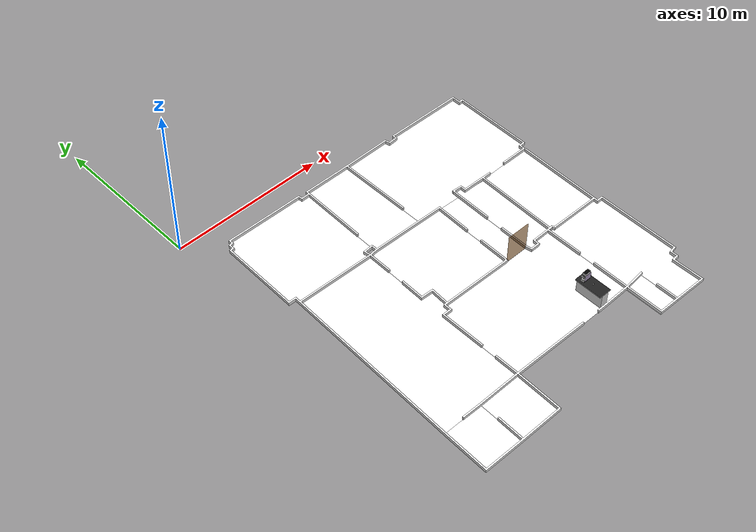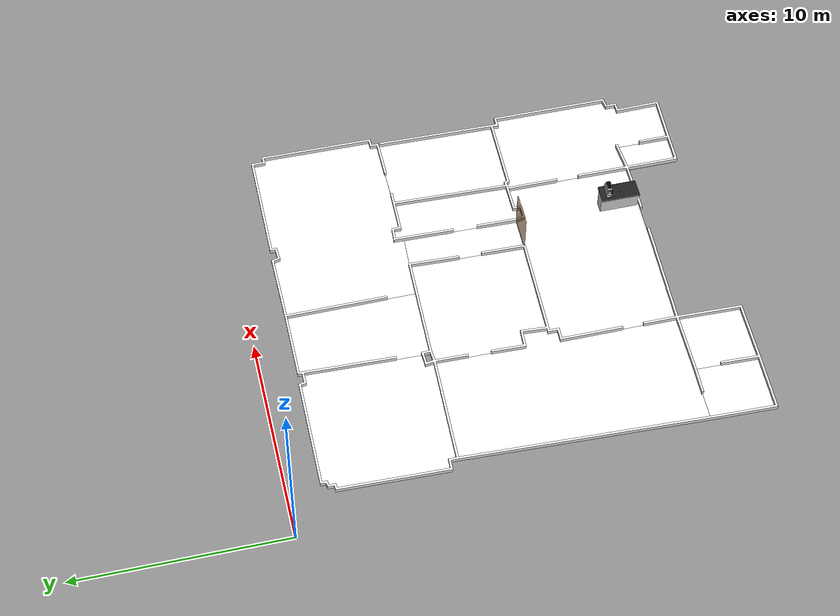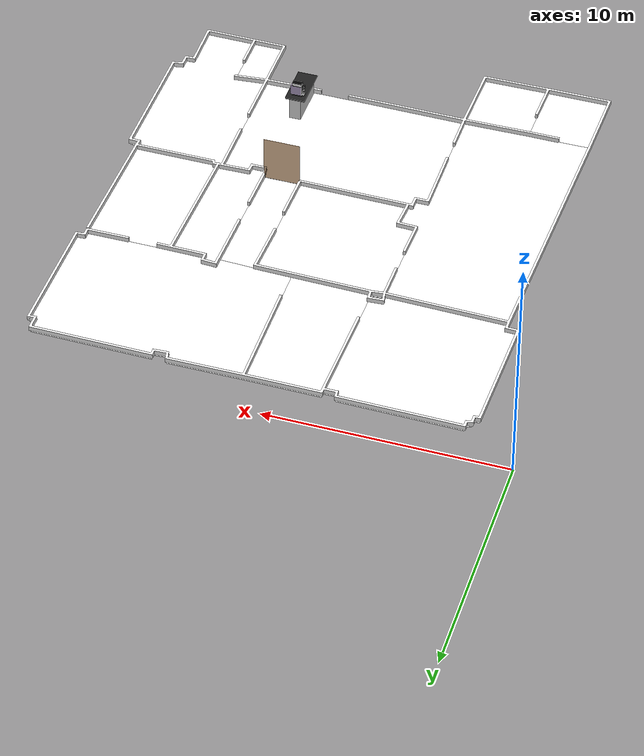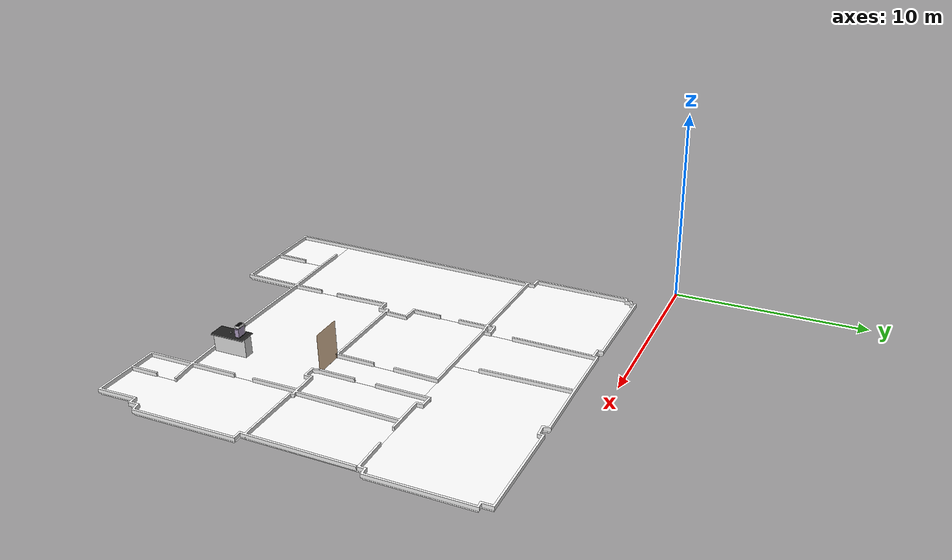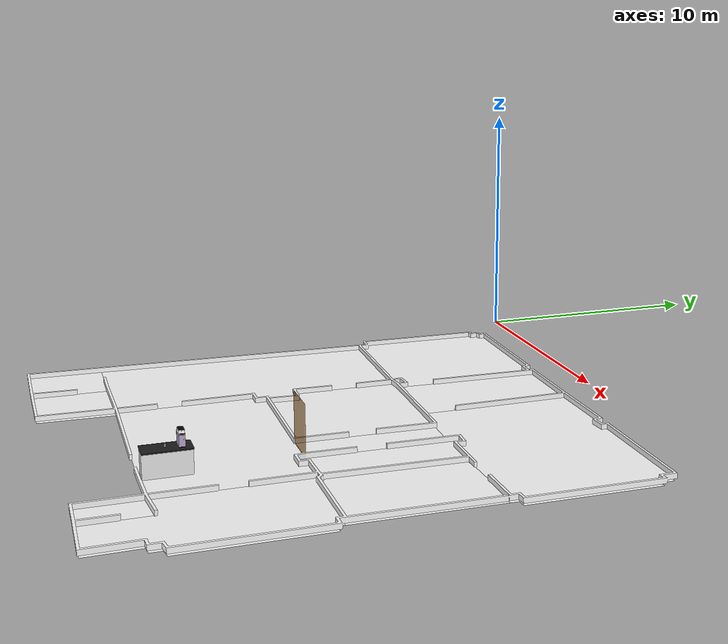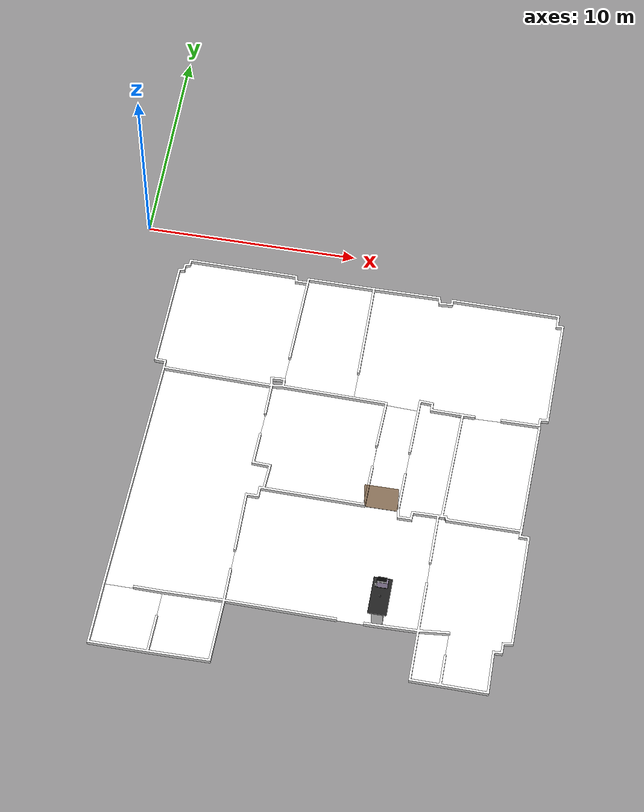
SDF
<sdf version="1.7">
  <world name="world">
    <scene>
      <ambient>0.8 0.8 0.8 1.0</ambient>
      <background>0 0 0</background>
      <grid>false</grid>
    </scene>
    <include>
      <uri>model://sun</uri>
    </include>
    <gui>
      <camera name="gui_camera">
        <pose>4.11873 -12.7554 9.02279 0 0.812 -0.450002</pose>
      </camera>
    </gui>

    <model name="door_cafeteria">
      <pose>13.459129316830579 -13.296819125933453 0.0 0 0 0.00034506554875947566</pose>
      <link name="right">
        <pose>0 0 1.01 0 0 0</pose>
        <visual name="right_visual">
          <geometry>
            <box>
              <size>1.5409707459290378 0.03 2.0</size>
            </box>
          </geometry>
          <material>
            <ambient>0.5 0.25 0 0.6</ambient>
            <diffuse>0.5 0.25 0 0.6</diffuse>
          </material>
        </visual>
        <collision name="right_collision">
          <geometry>
            <box>
              <size>1.5409707459290378 0.03 2.0</size>
            </box>
          </geometry>
          <surface>
            <contact>
              <collide_bitmask>0x02</collide_bitmask>
            </contact>
          </surface>
        </collision>
        <inertial>
          <mass>50.0</mass>
          <inertia>
            <ixx>16.670416666666668</ixx>
            <iyy>26.56079516587123</iyy>
            <izz>9.897878499204564</izz>
          </inertia>
        </inertial>
      </link>
      <joint name="right_joint" type="revolute">
        <parent>world</parent>
        <child>right</child>
        <axis>
          <xyz>0 0 -1</xyz>
          <limit>
            <lower>0</lower>
            <upper>1.57</upper>
          </limit>
        </axis>
        <pose>0.7754853729645189 0 0 0 0 0</pose>
      </joint>
    </model>

    <include>
      <name>starbots_complete_L1</name>
      <uri>model://starbots_complete_L1</uri>
      <pose>0 0 0.0 0 0 0</pose>
    </include>

        <!-- ADDED ELEMENTS for charging simulated system -->
    <plugin name="gazebo_ros_state" filename="libgazebo_ros_state.so">
      <ros>
        <namespace>/gazebo</namespace>
      </ros>
      <update_rate>5.0</update_rate>
    </plugin>

    <model name="starbots_bartender_dispenser">
      <static>1</static>
      <include>
        <uri>model://starbots_bartender_dispenser</uri>
      </include>
      <pose>14.2 -18.2 0.5 0 0 0</pose>
    </model>

    <model name="portable_cup_2">
      <static>0</static>
      <include>
        <uri>model://portable_cup_2</uri>
      </include>
      <pose>14.16 -18.19 1.025 1.57 0 0</pose>
    </model>

    <model name="coffee_machine">
      <static>1</static>
      <include>
        <uri>model://coffee_machine</uri>
      </include>
      <pose>14.0 -17.7 1.0 0 0 1.57</pose>
    </model>

  </world>
</sdf>

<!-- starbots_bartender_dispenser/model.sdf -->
<sdf version='1.7'>
  <model name="starbots_bartender_dispenser">
      <static>1</static>
      <link name='countertop'>
        <inertial>
          <mass>50.25</mass>
          <inertia>
            <ixx>0.00015</ixx>
            <ixy>0.000000</ixy>
            <ixz>0.000000</ixz>
            <iyy>0.00015</iyy>
            <iyz>0.000000</iyz>
            <izz>0.00015</izz>
          </inertia>
        </inertial>
        <collision name='countertop_c'>
          <geometry>
            <box>
              <size>0.5 1.8 1.0</size>
            </box>
          </geometry>
          <laser_retro>8000</laser_retro>
          <surface>
            <friction>
              <ode>
                <mu>30.0</mu>
                <mu2>30.0</mu2>
              </ode>
            </friction>
            <contact>
              <ode>
                <kp>1000000.0</kp>
                <kd>100.0</kd>
                <max_vel>1.0</max_vel>
                <min_depth>0.002</min_depth>
              </ode>
            </contact>
          </surface>
        </collision>
        <visual name='countertop_v'>
          <geometry>
            <box>
              <size>0.5 1.8 1.0</size>
            </box>
          </geometry>
          <material>
            <script>
              <uri>file://media/materials/scripts/gazebo.material</uri>
              <name>Gazebo/White</name>
            </script>
          </material>
        </visual>
        <collision name='top_c'>
          <pose>0 0 0.5 0 0 0</pose>

          <geometry>
            <box>
              <size>0.85 1.81 0.05</size>
            </box>
          </geometry>
          <laser_retro>8000</laser_retro>
          <surface>
            <friction>
              <ode>
                <mu>30.0</mu>
                <mu2>30.0</mu2>
              </ode>
            </friction>
            <contact>
              <ode>
                <kp>1000000.0</kp>
                <kd>100.0</kd>
                <max_vel>1.0</max_vel>
                <min_depth>0.002</min_depth>
              </ode>
            </contact>
          </surface>
        </collision>
        <visual name='top_v'>
          <pose>0 0 0.5 0 0 0</pose>

          <geometry>
            <box>
              <size>0.85 1.81 0.05</size>
            </box>
          </geometry>
          <material>
            <script>
              <uri>file://media/materials/scripts/gazebo.material</uri>
              <name>Gazebo/Black</name>
            </script>
          </material>
        </visual>

        <velocity_decay>
          <linear>0.000000</linear>
          <angular>0.000000</angular>
        </velocity_decay>
        <self_collide>0</self_collide>
        <kinematic>0</kinematic>
        <gravity>1</gravity>
      </link>

  </model>
</sdf>

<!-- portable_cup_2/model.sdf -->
<sdf version="1.5">
  <model name="portable_cup_2">
    <static>false</static>
    <link name="link">
      <inertial>
        <pose>0.04 0.05 0.04 0 -0 0</pose>
        <mass>0.1</mass>
        <inertia>
          <ixx>0.00013667</ixx>
          <ixy>0</ixy>
          <ixz>0</ixz>
          <iyy>0.00010667</iyy>
          <iyz>0</iyz>
          <izz>0.00013667</izz>
        </inertia>
      </inertial>

      <collision name="col_portable_cup_2">
        <pose>0 0 0 0 0 0</pose>
        <geometry>
            <mesh>
                <uri>model://portable_cup_2/meshes/coffee.STL</uri>
            </mesh>
        </geometry>
        <surface>
          <friction>
            <ode>
              <mu>0.01</mu>
              <mu2>0.01</mu2>
            </ode>
          </friction>
          <contact>
            <ode>
              <kp>10000000.0</kp>
              <kd>10000000.0</kd>
              <min_depth>0.001</min_depth>
              <max_vel>1.1</max_vel>
            </ode>
          </contact>
        </surface>
      </collision>

      <visual name="visual_portable_cup_2">
        <pose>0 0 0 0 0 0</pose>
        <geometry>
          <mesh>
            <uri>model://portable_cup_2/meshes/coffee.STL</uri>

          </mesh>
        </geometry>
      </visual>
    </link>

  </model>
</sdf>

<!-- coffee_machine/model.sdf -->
<sdf version="1.5">
  <model name="coffee_machine">
    <static>true</static>
    <pose>0 0 0 0 0 0</pose>
    <link name="body">
      <inertial>
        <mass>5</mass>
        <inertia>
          <ixx>1.0</ixx>
          <ixy>0.0</ixy>
          <iyy>1.0</iyy>
          <ixz>0.0</ixz>
          <iyz>0.0</iyz>
          <izz>1.0</izz>
        </inertia>
        <pose>0 0 0 0 0 0</pose>
      </inertial>
      <collision name="collision">
        <geometry>
          <mesh>
            <uri>model://coffee_machine/meshes/cafeteria.dae</uri>
          </mesh>
        </geometry>
      </collision>
      <visual name="visual">
        <geometry>
          <mesh>
            <uri>model://coffee_machine/meshes/cafeteria.dae</uri>
          </mesh>
        </geometry>
      </visual>
    </link>
  </model>
</sdf>

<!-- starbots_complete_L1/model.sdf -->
<sdf version="1.7">
  <model name="starbots_complete_L1">
    <static>true</static>
    <link name="floor_1">
      <visual name="visual">
        <geometry>
          <mesh>
            <uri>model://starbots_complete_L1/meshes/floor_1.obj</uri>
          </mesh>
        </geometry>
        <material>
          <diffuse>1.0 1.0 1.0</diffuse>
          <specular>0.1 0.1 0.1</specular>
          <pbr>
            <metal>
              <metalness>0.0</metalness>
              <albedo_map>model://starbots_complete_L1/meshes/blue_linoleum.png</albedo_map>
            </metal>
          </pbr>
          <script>
            <uri>model://starbots_complete_L1/meshes/</uri>
            <name>floor_1_Diffuse</name>
          </script>
        </material>
      </visual>
      <collision name="collision">
        <geometry>
          <mesh>
            <uri>model://starbots_complete_L1/meshes/floor_1.obj</uri>
          </mesh>
        </geometry>
        <surface>
          <contact>
            <collide_bitmask>0x01</collide_bitmask>
          </contact>
        </surface>
      </collision>
    </link>
    <link name="floor_2">
      <visual name="visual">
        <geometry>
          <mesh>
            <uri>model://starbots_complete_L1/meshes/floor_2.obj</uri>
          </mesh>
        </geometry>
        <material>
          <diffuse>1.0 1.0 1.0</diffuse>
          <specular>0.1 0.1 0.1</specular>
          <pbr>
            <metal>
              <metalness>0.0</metalness>
              <albedo_map>model://starbots_complete_L1/meshes/blue_linoleum.png</albedo_map>
            </metal>
          </pbr>
          <script>
            <uri>model://starbots_complete_L1/meshes/</uri>
            <name>floor_2_Diffuse</name>
          </script>
        </material>
      </visual>
      <collision name="collision">
        <geometry>
          <mesh>
            <uri>model://starbots_complete_L1/meshes/floor_2.obj</uri>
          </mesh>
        </geometry>
        <surface>
          <contact>
            <collide_bitmask>0x01</collide_bitmask>
          </contact>
        </surface>
      </collision>
    </link>
    <link name="floor_3">
      <visual name="visual">
        <geometry>
          <mesh>
            <uri>model://starbots_complete_L1/meshes/floor_3.obj</uri>
          </mesh>
        </geometry>
        <material>
          <diffuse>1.0 1.0 1.0</diffuse>
          <specular>0.1 0.1 0.1</specular>
          <pbr>
            <metal>
              <metalness>0.0</metalness>
              <albedo_map>model://starbots_complete_L1/meshes/blue_linoleum.png</albedo_map>
            </metal>
          </pbr>
          <script>
            <uri>model://starbots_complete_L1/meshes/</uri>
            <name>floor_3_Diffuse</name>
          </script>
        </material>
      </visual>
      <collision name="collision">
        <geometry>
          <mesh>
            <uri>model://starbots_complete_L1/meshes/floor_3.obj</uri>
          </mesh>
        </geometry>
        <surface>
          <contact>
            <collide_bitmask>0x01</collide_bitmask>
          </contact>
        </surface>
      </collision>
    </link>
    <link name="floor_4">
      <visual name="visual">
        <geometry>
          <mesh>
            <uri>model://starbots_complete_L1/meshes/floor_4.obj</uri>
          </mesh>
        </geometry>
        <material>
          <diffuse>1.0 1.0 1.0</diffuse>
          <specular>0.1 0.1 0.1</specular>
          <pbr>
            <metal>
              <metalness>0.0</metalness>
              <albedo_map>model://starbots_complete_L1/meshes/blue_linoleum.png</albedo_map>
            </metal>
          </pbr>
          <script>
            <uri>model://starbots_complete_L1/meshes/</uri>
            <name>floor_4_Diffuse</name>
          </script>
        </material>
      </visual>
      <collision name="collision">
        <geometry>
          <mesh>
            <uri>model://starbots_complete_L1/meshes/floor_4.obj</uri>
          </mesh>
        </geometry>
        <surface>
          <contact>
            <collide_bitmask>0x01</collide_bitmask>
          </contact>
        </surface>
      </collision>
    </link>
    <link name="floor_5">
      <visual name="visual">
        <geometry>
          <mesh>
            <uri>model://starbots_complete_L1/meshes/floor_5.obj</uri>
          </mesh>
        </geometry>
        <material>
          <diffuse>1.0 1.0 1.0</diffuse>
          <specular>0.1 0.1 0.1</specular>
          <pbr>
            <metal>
              <metalness>0.0</metalness>
              <albedo_map>model://starbots_complete_L1/meshes/blue_linoleum.png</albedo_map>
            </metal>
          </pbr>
          <script>
            <uri>model://starbots_complete_L1/meshes/</uri>
            <name>floor_5_Diffuse</name>
          </script>
        </material>
      </visual>
      <collision name="collision">
        <geometry>
          <mesh>
            <uri>model://starbots_complete_L1/meshes/floor_5.obj</uri>
          </mesh>
        </geometry>
        <surface>
          <contact>
            <collide_bitmask>0x01</collide_bitmask>
          </contact>
        </surface>
      </collision>
    </link>
    <link name="floor_6">
      <visual name="visual">
        <geometry>
          <mesh>
            <uri>model://starbots_complete_L1/meshes/floor_6.obj</uri>
          </mesh>
        </geometry>
        <material>
          <diffuse>1.0 1.0 1.0</diffuse>
          <specular>0.1 0.1 0.1</specular>
          <pbr>
            <metal>
              <metalness>0.0</metalness>
              <albedo_map>model://starbots_complete_L1/meshes/blue_linoleum.png</albedo_map>
            </metal>
          </pbr>
          <script>
            <uri>model://starbots_complete_L1/meshes/</uri>
            <name>floor_6_Diffuse</name>
          </script>
        </material>
      </visual>
      <collision name="collision">
        <geometry>
          <mesh>
            <uri>model://starbots_complete_L1/meshes/floor_6.obj</uri>
          </mesh>
        </geometry>
        <surface>
          <contact>
            <collide_bitmask>0x01</collide_bitmask>
          </contact>
        </surface>
      </collision>
    </link>
    <link name="floor_7">
      <visual name="visual">
        <geometry>
          <mesh>
            <uri>model://starbots_complete_L1/meshes/floor_7.obj</uri>
          </mesh>
        </geometry>
        <material>
          <diffuse>1.0 1.0 1.0</diffuse>
          <specular>0.1 0.1 0.1</specular>
          <pbr>
            <metal>
              <metalness>0.0</metalness>
              <albedo_map>model://starbots_complete_L1/meshes/blue_linoleum.png</albedo_map>
            </metal>
          </pbr>
          <script>
            <uri>model://starbots_complete_L1/meshes/</uri>
            <name>floor_7_Diffuse</name>
          </script>
        </material>
      </visual>
      <collision name="collision">
        <geometry>
          <mesh>
            <uri>model://starbots_complete_L1/meshes/floor_7.obj</uri>
          </mesh>
        </geometry>
        <surface>
          <contact>
            <collide_bitmask>0x01</collide_bitmask>
          </contact>
        </surface>
      </collision>
    </link>
    <link name="floor_8">
      <visual name="visual">
        <geometry>
          <mesh>
            <uri>model://starbots_complete_L1/meshes/floor_8.obj</uri>
          </mesh>
        </geometry>
        <material>
          <diffuse>1.0 1.0 1.0</diffuse>
          <specular>0.1 0.1 0.1</specular>
          <pbr>
            <metal>
              <metalness>0.0</metalness>
              <albedo_map>model://starbots_complete_L1/meshes/blue_linoleum.png</albedo_map>
            </metal>
          </pbr>
          <script>
            <uri>model://starbots_complete_L1/meshes/</uri>
            <name>floor_8_Diffuse</name>
          </script>
        </material>
      </visual>
      <collision name="collision">
        <geometry>
          <mesh>
            <uri>model://starbots_complete_L1/meshes/floor_8.obj</uri>
          </mesh>
        </geometry>
        <surface>
          <contact>
            <collide_bitmask>0x01</collide_bitmask>
          </contact>
        </surface>
      </collision>
    </link>
    <link name="floor_9">
      <visual name="visual">
        <geometry>
          <mesh>
            <uri>model://starbots_complete_L1/meshes/floor_9.obj</uri>
          </mesh>
        </geometry>
        <material>
          <diffuse>1.0 1.0 1.0</diffuse>
          <specular>0.1 0.1 0.1</specular>
          <pbr>
            <metal>
              <metalness>0.0</metalness>
              <albedo_map>model://starbots_complete_L1/meshes/blue_linoleum.png</albedo_map>
            </metal>
          </pbr>
          <script>
            <uri>model://starbots_complete_L1/meshes/</uri>
            <name>floor_9_Diffuse</name>
          </script>
        </material>
      </visual>
      <collision name="collision">
        <geometry>
          <mesh>
            <uri>model://starbots_complete_L1/meshes/floor_9.obj</uri>
          </mesh>
        </geometry>
        <surface>
          <contact>
            <collide_bitmask>0x01</collide_bitmask>
          </contact>
        </surface>
      </collision>
    </link>
    <link name="floor_10">
      <visual name="visual">
        <geometry>
          <mesh>
            <uri>model://starbots_complete_L1/meshes/floor_10.obj</uri>
          </mesh>
        </geometry>
        <material>
          <diffuse>1.0 1.0 1.0</diffuse>
          <specular>0.1 0.1 0.1</specular>
          <pbr>
            <metal>
              <metalness>0.0</metalness>
              <albedo_map>model://starbots_complete_L1/meshes/blue_linoleum.png</albedo_map>
            </metal>
          </pbr>
          <script>
            <uri>model://starbots_complete_L1/meshes/</uri>
            <name>floor_10_Diffuse</name>
          </script>
        </material>
      </visual>
      <collision name="collision">
        <geometry>
          <mesh>
            <uri>model://starbots_complete_L1/meshes/floor_10.obj</uri>
          </mesh>
        </geometry>
        <surface>
          <contact>
            <collide_bitmask>0x01</collide_bitmask>
          </contact>
        </surface>
      </collision>
    </link>
    <link name="floor_11">
      <visual name="visual">
        <geometry>
          <mesh>
            <uri>model://starbots_complete_L1/meshes/floor_11.obj</uri>
          </mesh>
        </geometry>
        <material>
          <diffuse>1.0 1.0 1.0</diffuse>
          <specular>0.1 0.1 0.1</specular>
          <pbr>
            <metal>
              <metalness>0.0</metalness>
              <albedo_map>model://starbots_complete_L1/meshes/blue_linoleum.png</albedo_map>
            </metal>
          </pbr>
          <script>
            <uri>model://starbots_complete_L1/meshes/</uri>
            <name>floor_11_Diffuse</name>
          </script>
        </material>
      </visual>
      <collision name="collision">
        <geometry>
          <mesh>
            <uri>model://starbots_complete_L1/meshes/floor_11.obj</uri>
          </mesh>
        </geometry>
        <surface>
          <contact>
            <collide_bitmask>0x01</collide_bitmask>
          </contact>
        </surface>
      </collision>
    </link>
    <link name="floor_12">
      <visual name="visual">
        <geometry>
          <mesh>
            <uri>model://starbots_complete_L1/meshes/floor_12.obj</uri>
          </mesh>
        </geometry>
        <material>
          <diffuse>1.0 1.0 1.0</diffuse>
          <specular>0.1 0.1 0.1</specular>
          <pbr>
            <metal>
              <metalness>0.0</metalness>
              <albedo_map>model://starbots_complete_L1/meshes/blue_linoleum.png</albedo_map>
            </metal>
          </pbr>
          <script>
            <uri>model://starbots_complete_L1/meshes/</uri>
            <name>floor_12_Diffuse</name>
          </script>
        </material>
      </visual>
      <collision name="collision">
        <geometry>
          <mesh>
            <uri>model://starbots_complete_L1/meshes/floor_12.obj</uri>
          </mesh>
        </geometry>
        <surface>
          <contact>
            <collide_bitmask>0x01</collide_bitmask>
          </contact>
        </surface>
      </collision>
    </link>
    <link name="floor_13">
      <visual name="visual">
        <geometry>
          <mesh>
            <uri>model://starbots_complete_L1/meshes/floor_13.obj</uri>
          </mesh>
        </geometry>
        <material>
          <diffuse>1.0 1.0 1.0</diffuse>
          <specular>0.1 0.1 0.1</specular>
          <pbr>
            <metal>
              <metalness>0.0</metalness>
              <albedo_map>model://starbots_complete_L1/meshes/blue_linoleum.png</albedo_map>
            </metal>
          </pbr>
          <script>
            <uri>model://starbots_complete_L1/meshes/</uri>
            <name>floor_13_Diffuse</name>
          </script>
        </material>
      </visual>
      <collision name="collision">
        <geometry>
          <mesh>
            <uri>model://starbots_complete_L1/meshes/floor_13.obj</uri>
          </mesh>
        </geometry>
        <surface>
          <contact>
            <collide_bitmask>0x01</collide_bitmask>
          </contact>
        </surface>
      </collision>
    </link>
    <link name="wall_1">
      <visual name="wall_1">
        <geometry>
          <mesh>
            <uri>model://starbots_complete_L1/meshes/wall_1.obj</uri>
          </mesh>
        </geometry>
        <transparency>0.0</transparency>
        <material>
          <diffuse>1.0 1.0 1.0</diffuse>
          <specular>0.1 0.1 0.1</specular>
          <pbr>
            <metal>
              <metalness>0.0</metalness>
              <albedo_map>model://starbots_complete_L1/meshes/default.png</albedo_map>
            </metal>
          </pbr>
          <script>
            <uri>model://starbots_complete_L1/meshes/</uri>
            <name>wall_1_Diffuse</name>
          </script>
        </material>
      </visual>
      <collision name="collision">
        <geometry>
          <mesh>
            <uri>model://starbots_complete_L1/meshes/wall_1.obj</uri>
          </mesh>
        </geometry>
        <surface>
          <contact>
            <collide_bitmask>0x01</collide_bitmask>
          </contact>
        </surface>
      </collision>
      <pose>1.7342909891907992 -22.225244384009383 0 0 0 0</pose>
    </link>
  </model>
</sdf>
